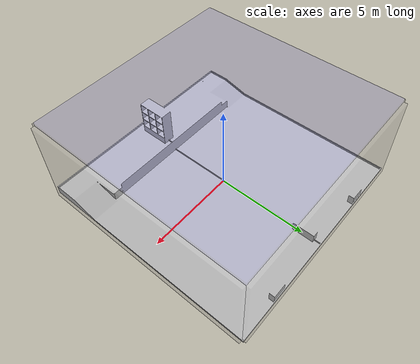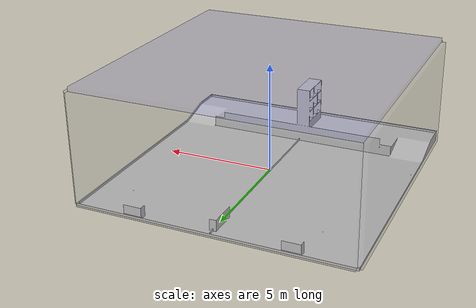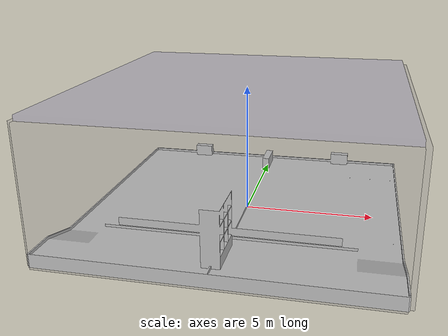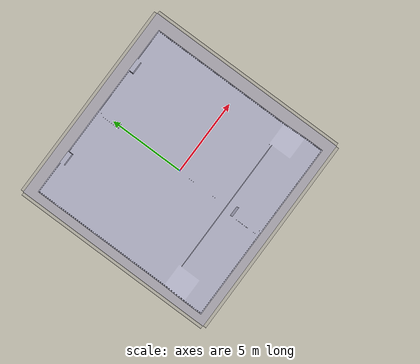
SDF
<?xml version="1.0" ?>
<sdf version="1.6">
  <world name="my_competition_world">
    <include>
      <uri>model://sun</uri>
    </include>

    <model name="competition_field">
      <static>true</static>
      <pose>-6.1 -6.1 0 0 0 0</pose>

      <link name="link_0">
        <visual name="visual_0">
          <geometry>
            <mesh>
              <uri>model://competition_field/meshes/world_no_forest.stl</uri>
              <scale>0.001 0.001 0.001</scale>
            </mesh>
          </geometry>
          <material>
            <ambient>0.8 0.8 0.8 1</ambient>
            <diffuse>0.8 0.8 0.8 1</diffuse>
            <specular>0.1 0.1 0.1 1</specular>
          </material>
        </visual>
        <collision name="collision_0">
          <geometry>
            <mesh>
              <uri>model://competition_field/meshes/world_no_forest.stl</uri>
              <scale>0.001 0.001 0.001</scale>
            </mesh>
          </geometry>
        </collision>
      </link>
    </model>

    <model name="enclosure_walls_ceiling">
      <static>true</static>
      <pose>0 0 0 0 0 0</pose>

      <link name="wall_south">
        <pose>0 -6.1 2.5 0 0 0</pose> <visual name="visual">
          <geometry><box><size>12 0.2 5</size></box></geometry>
          <material>
            <ambient>0.5 0.5 0.5 0.2</ambient>
            <diffuse>0.5 0.5 0.5 0.2</diffuse>
          </material>
        </visual>
        <collision name="collision">
          <geometry><box><size>12 0.2 5</size></box></geometry>
        </collision>
      </link>

      <link name="wall_north">
        <pose>0 6.1 2.5 0 0 0</pose>
        <visual name="visual">
          <geometry><box><size>12 0.2 5</size></box></geometry>
          <material>
            <ambient>0.5 0.5 0.5 0.2</ambient>
            <diffuse>0.5 0.5 0.5 0.2</diffuse>
          </material>
        </visual>
        <collision name="collision">
          <geometry><box><size>12 0.2 5</size></box></geometry>
        </collision>
      </link>

      <link name="wall_west">
        <pose>-6.1 0 2.5 0 0 0</pose>
        <visual name="visual">
          <geometry><box><size>0.2 12 5</size></box></geometry>
          <material>
            <ambient>0.5 0.5 0.5 0.2</ambient>
            <diffuse>0.5 0.5 0.5 0.2</diffuse>
          </material>
        </visual>
        <collision name="collision">
          <geometry><box><size>0.2 12 5</size></box></geometry>
        </collision>
      </link>

      <link name="wall_east">
        <pose>6.1 0 2.5 0 0 0</pose>
        <visual name="visual">
          <geometry><box><size>0.2 12 5</size></box></geometry>
          <material>
            <ambient>0.5 0.5 0.5 0.2</ambient>
            <diffuse>0.5 0.5 0.5 0.2</diffuse>
          </material>
        </visual>
        <collision name="collision">
          <geometry><box><size>0.2 12 5</size></box></geometry>
        </collision>
      </link>

      <link name="ceiling">
        <pose>0 0 5.1 0 0 0</pose> <visual name="visual">
          <geometry><box><size>12 12 0.2</size></box></geometry>
          <material>
            <ambient>0.3 0.3 0.7 0.2</ambient> <diffuse>0.3 0.3 0.7 0.2</diffuse>
          </material>
        </visual>
        <collision name="collision">
          <geometry><box><size>12 12 0.2</size></box></geometry>
        </collision>
      </link>

    </model>

  </world>
</sdf>
